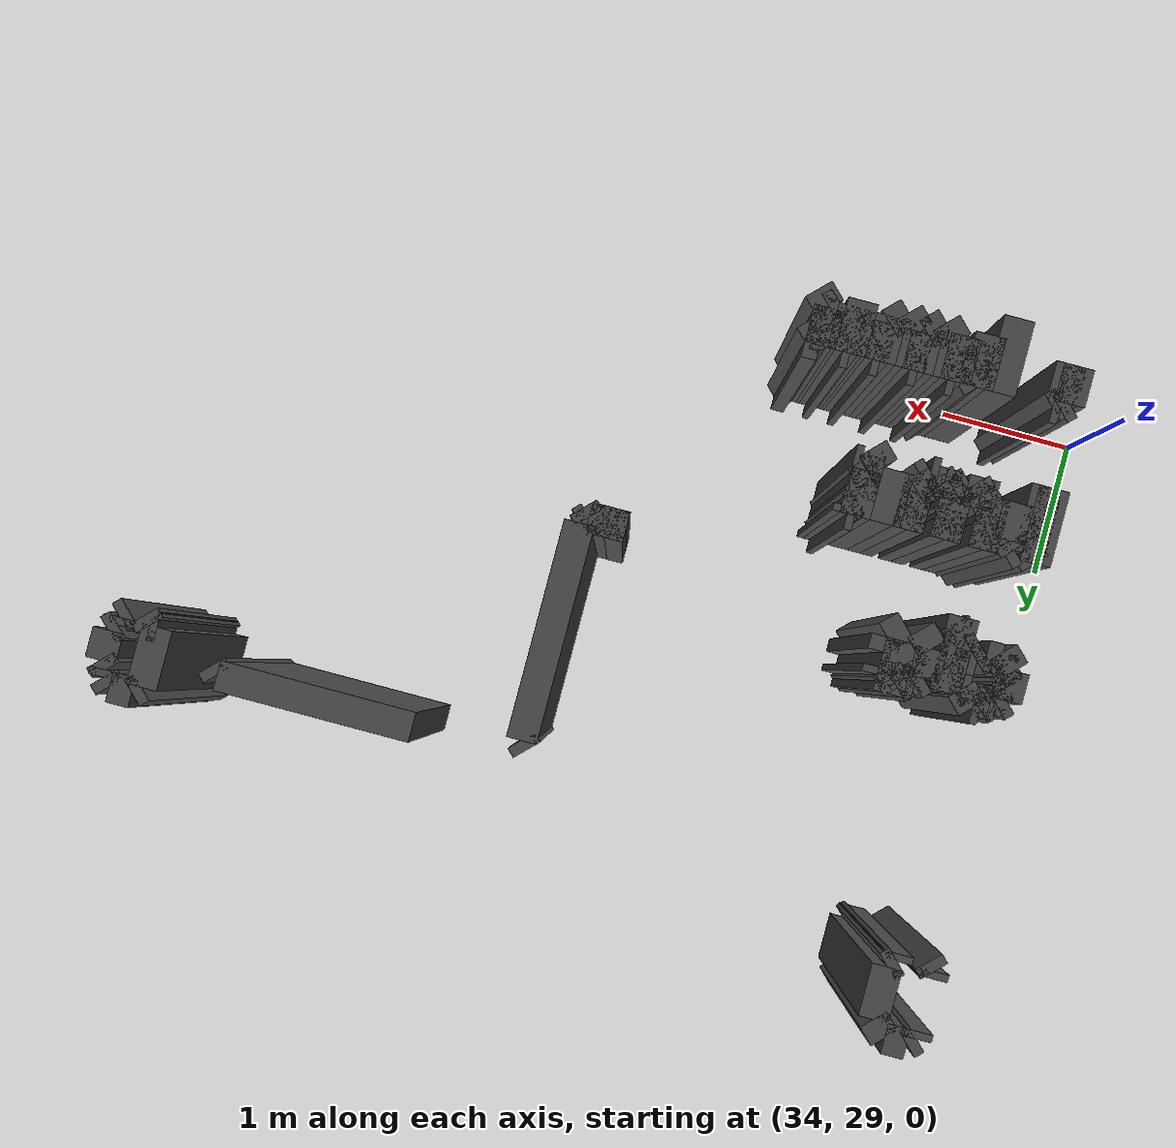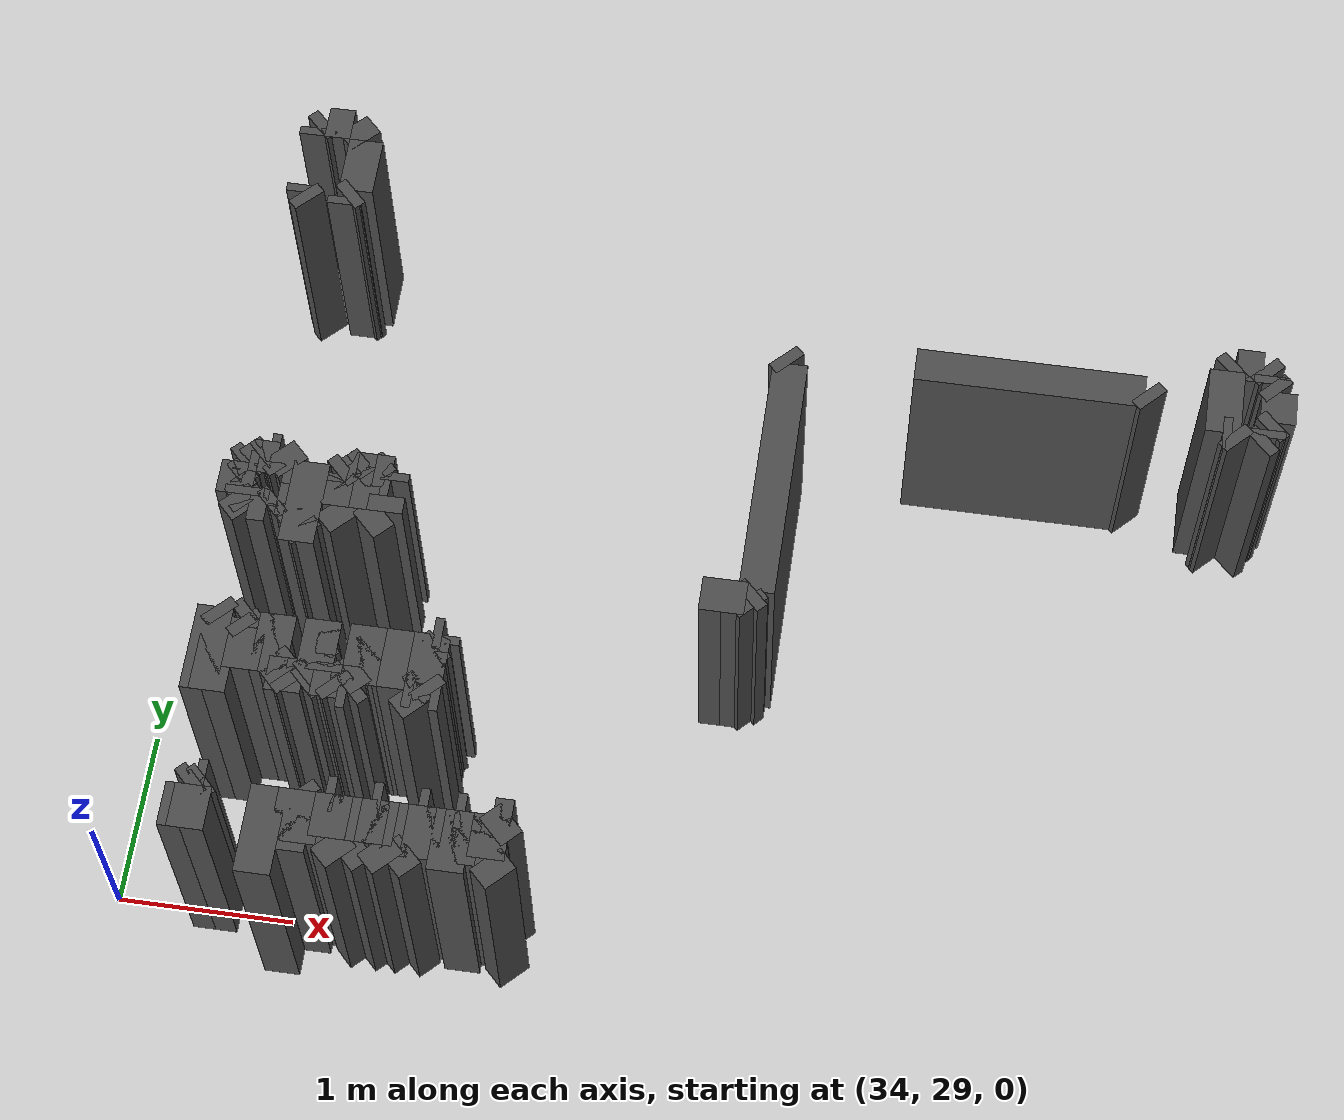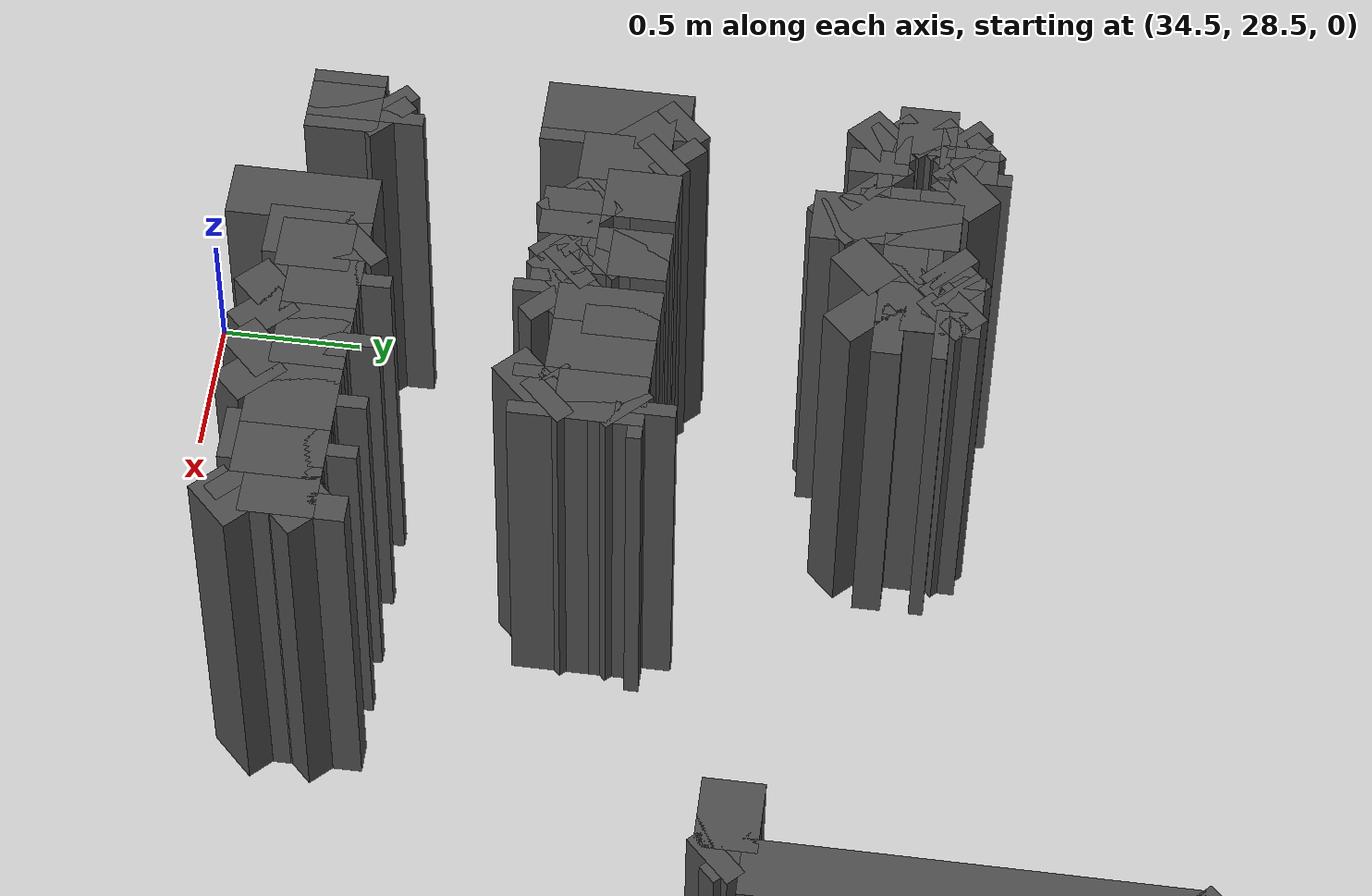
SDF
<sdf version="1.9">
 <model name="generated_walls">
  <static>true</static>
  <link name="wall_7_0">
   <pose>34.475 32.875 0.75 0 0 2.356</pose>
   <collision name="collision"><geometry><box><size>0.071 0.2 1.5</size></box></geometry></collision>
   <visual name="visual">
    <geometry><box><size>0.071 0.2 1.5</size></box></geometry>
    <material><ambient>0.3 0.3 0.3 1</ambient></material>
   </visual>
  </link>
  <link name="wall_7_1">
   <pose>34.450 32.925 0.75 0 0 1.571</pose>
   <collision name="collision"><geometry><box><size>0.050 0.2 1.5</size></box></geometry></collision>
   <visual name="visual">
    <geometry><box><size>0.050 0.2 1.5</size></box></geometry>
    <material><ambient>0.3 0.3 0.3 1</ambient></material>
   </visual>
  </link>
  <link name="wall_7_5">
   <pose>34.450 33.325 0.75 0 0 1.571</pose>
   <collision name="collision"><geometry><box><size>0.050 0.2 1.5</size></box></geometry></collision>
   <visual name="visual">
    <geometry><box><size>0.050 0.2 1.5</size></box></geometry>
    <material><ambient>0.3 0.3 0.3 1</ambient></material>
   </visual>
  </link>
  <link name="wall_7_6">
   <pose>34.475 33.375 0.75 0 0 0.785</pose>
   <collision name="collision"><geometry><box><size>0.071 0.2 1.5</size></box></geometry></collision>
   <visual name="visual">
    <geometry><box><size>0.071 0.2 1.5</size></box></geometry>
    <material><ambient>0.3 0.3 0.3 1</ambient></material>
   </visual>
  </link>
  <link name="wall_7_7">
   <pose>34.575 33.400 0.75 0 0 0.000</pose>
   <collision name="collision"><geometry><box><size>0.150 0.2 1.5</size></box></geometry></collision>
   <visual name="visual">
    <geometry><box><size>0.150 0.2 1.5</size></box></geometry>
    <material><ambient>0.3 0.3 0.3 1</ambient></material>
   </visual>
  </link>
  <link name="wall_7_8">
   <pose>34.700 33.350 0.75 0 0 -0.785</pose>
   <collision name="collision"><geometry><box><size>0.141 0.2 1.5</size></box></geometry></collision>
   <visual name="visual">
    <geometry><box><size>0.141 0.2 1.5</size></box></geometry>
    <material><ambient>0.3 0.3 0.3 1</ambient></material>
   </visual>
  </link>
  <link name="wall_7_9">
   <pose>34.750 33.125 0.75 0 0 -1.571</pose>
   <collision name="collision"><geometry><box><size>0.350 0.2 1.5</size></box></geometry></collision>
   <visual name="visual">
    <geometry><box><size>0.350 0.2 1.5</size></box></geometry>
    <material><ambient>0.3 0.3 0.3 1</ambient></material>
   </visual>
  </link>
  <link name="wall_7_10">
   <pose>34.725 32.925 0.75 0 0 -2.356</pose>
   <collision name="collision"><geometry><box><size>0.071 0.2 1.5</size></box></geometry></collision>
   <visual name="visual">
    <geometry><box><size>0.071 0.2 1.5</size></box></geometry>
    <material><ambient>0.3 0.3 0.3 1</ambient></material>
   </visual>
  </link>
  <link name="wall_7_11">
   <pose>34.700 32.875 0.75 0 0 -1.571</pose>
   <collision name="collision"><geometry><box><size>0.050 0.2 1.5</size></box></geometry></collision>
   <visual name="visual">
    <geometry><box><size>0.050 0.2 1.5</size></box></geometry>
    <material><ambient>0.3 0.3 0.3 1</ambient></material>
   </visual>
  </link>
  <link name="wall_26_0">
   <pose>39.925 32.025 0.75 0 0 2.356</pose>
   <collision name="collision"><geometry><box><size>0.071 0.2 1.5</size></box></geometry></collision>
   <visual name="visual">
    <geometry><box><size>0.071 0.2 1.5</size></box></geometry>
    <material><ambient>0.3 0.3 0.3 1</ambient></material>
   </visual>
  </link>
  <link name="wall_26_1">
   <pose>39.875 32.050 0.75 0 0 3.142</pose>
   <collision name="collision"><geometry><box><size>0.050 0.2 1.5</size></box></geometry></collision>
   <visual name="visual">
    <geometry><box><size>0.050 0.2 1.5</size></box></geometry>
    <material><ambient>0.3 0.3 0.3 1</ambient></material>
   </visual>
  </link>
  <link name="wall_26_2">
   <pose>39.850 32.250 0.75 0 0 1.571</pose>
   <collision name="collision"><geometry><box><size>0.400 0.2 1.5</size></box></geometry></collision>
   <visual name="visual">
    <geometry><box><size>0.400 0.2 1.5</size></box></geometry>
    <material><ambient>0.3 0.3 0.3 1</ambient></material>
   </visual>
  </link>
  <link name="wall_26_3">
   <pose>39.875 32.475 0.75 0 0 0.785</pose>
   <collision name="collision"><geometry><box><size>0.071 0.2 1.5</size></box></geometry></collision>
   <visual name="visual">
    <geometry><box><size>0.071 0.2 1.5</size></box></geometry>
    <material><ambient>0.3 0.3 0.3 1</ambient></material>
   </visual>
  </link>
  <link name="wall_26_4">
   <pose>39.975 32.500 0.75 0 0 0.000</pose>
   <collision name="collision"><geometry><box><size>0.150 0.2 1.5</size></box></geometry></collision>
   <visual name="visual">
    <geometry><box><size>0.150 0.2 1.5</size></box></geometry>
    <material><ambient>0.3 0.3 0.3 1</ambient></material>
   </visual>
  </link>
  <link name="wall_26_5">
   <pose>40.075 32.475 0.75 0 0 -0.785</pose>
   <collision name="collision"><geometry><box><size>0.071 0.2 1.5</size></box></geometry></collision>
   <visual name="visual">
    <geometry><box><size>0.071 0.2 1.5</size></box></geometry>
    <material><ambient>0.3 0.3 0.3 1</ambient></material>
   </visual>
  </link>
  <link name="wall_26_6">
   <pose>40.100 32.425 0.75 0 0 -1.571</pose>
   <collision name="collision"><geometry><box><size>0.050 0.2 1.5</size></box></geometry></collision>
   <visual name="visual">
    <geometry><box><size>0.050 0.2 1.5</size></box></geometry>
    <material><ambient>0.3 0.3 0.3 1</ambient></material>
   </visual>
  </link>
  <link name="wall_26_7">
   <pose>40.125 32.375 0.75 0 0 -0.785</pose>
   <collision name="collision"><geometry><box><size>0.071 0.2 1.5</size></box></geometry></collision>
   <visual name="visual">
    <geometry><box><size>0.071 0.2 1.5</size></box></geometry>
    <material><ambient>0.3 0.3 0.3 1</ambient></material>
   </visual>
  </link>
  <link name="wall_26_8">
   <pose>40.150 32.250 0.75 0 0 -1.571</pose>
   <collision name="collision"><geometry><box><size>0.200 0.2 1.5</size></box></geometry></collision>
   <visual name="visual">
    <geometry><box><size>0.200 0.2 1.5</size></box></geometry>
    <material><ambient>0.3 0.3 0.3 1</ambient></material>
   </visual>
  </link>
  <link name="wall_26_9">
   <pose>40.125 32.125 0.75 0 0 -2.356</pose>
   <collision name="collision"><geometry><box><size>0.071 0.2 1.5</size></box></geometry></collision>
   <visual name="visual">
    <geometry><box><size>0.071 0.2 1.5</size></box></geometry>
    <material><ambient>0.3 0.3 0.3 1</ambient></material>
   </visual>
  </link>
  <link name="wall_26_10">
   <pose>40.100 32.075 0.75 0 0 -1.571</pose>
   <collision name="collision"><geometry><box><size>0.050 0.2 1.5</size></box></geometry></collision>
   <visual name="visual">
    <geometry><box><size>0.050 0.2 1.5</size></box></geometry>
    <material><ambient>0.3 0.3 0.3 1</ambient></material>
   </visual>
  </link>
  <link name="wall_26_11">
   <pose>40.075 32.025 0.75 0 0 -2.356</pose>
   <collision name="collision"><geometry><box><size>0.071 0.2 1.5</size></box></geometry></collision>
   <visual name="visual">
    <geometry><box><size>0.071 0.2 1.5</size></box></geometry>
    <material><ambient>0.3 0.3 0.3 1</ambient></material>
   </visual>
  </link>
  <link name="wall_34_0">
   <pose>35.050 30.850 0.75 0 0 2.356</pose>
   <collision name="collision"><geometry><box><size>0.141 0.2 1.5</size></box></geometry></collision>
   <visual name="visual">
    <geometry><box><size>0.141 0.2 1.5</size></box></geometry>
    <material><ambient>0.3 0.3 0.3 1</ambient></material>
   </visual>
  </link>
  <link name="wall_34_1">
   <pose>35.000 31.000 0.75 0 0 1.571</pose>
   <collision name="collision"><geometry><box><size>0.200 0.2 1.5</size></box></geometry></collision>
   <visual name="visual">
    <geometry><box><size>0.200 0.2 1.5</size></box></geometry>
    <material><ambient>0.3 0.3 0.3 1</ambient></material>
   </visual>
  </link>
  <link name="wall_34_2">
   <pose>35.025 31.125 0.75 0 0 0.785</pose>
   <collision name="collision"><geometry><box><size>0.071 0.2 1.5</size></box></geometry></collision>
   <visual name="visual">
    <geometry><box><size>0.071 0.2 1.5</size></box></geometry>
    <material><ambient>0.3 0.3 0.3 1</ambient></material>
   </visual>
  </link>
  <link name="wall_34_3">
   <pose>35.075 31.150 0.75 0 0 0.000</pose>
   <collision name="collision"><geometry><box><size>0.050 0.2 1.5</size></box></geometry></collision>
   <visual name="visual">
    <geometry><box><size>0.050 0.2 1.5</size></box></geometry>
    <material><ambient>0.3 0.3 0.3 1</ambient></material>
   </visual>
  </link>
  <link name="wall_34_4">
   <pose>35.125 31.175 0.75 0 0 0.785</pose>
   <collision name="collision"><geometry><box><size>0.071 0.2 1.5</size></box></geometry></collision>
   <visual name="visual">
    <geometry><box><size>0.071 0.2 1.5</size></box></geometry>
    <material><ambient>0.3 0.3 0.3 1</ambient></material>
   </visual>
  </link>
  <link name="wall_34_5">
   <pose>35.175 31.175 0.75 0 0 -0.785</pose>
   <collision name="collision"><geometry><box><size>0.071 0.2 1.5</size></box></geometry></collision>
   <visual name="visual">
    <geometry><box><size>0.071 0.2 1.5</size></box></geometry>
    <material><ambient>0.3 0.3 0.3 1</ambient></material>
   </visual>
  </link>
  <link name="wall_34_6">
   <pose>35.250 31.150 0.75 0 0 0.000</pose>
   <collision name="collision"><geometry><box><size>0.100 0.2 1.5</size></box></geometry></collision>
   <visual name="visual">
    <geometry><box><size>0.100 0.2 1.5</size></box></geometry>
    <material><ambient>0.3 0.3 0.3 1</ambient></material>
   </visual>
  </link>
  <link name="wall_34_7">
   <pose>35.300 31.125 0.75 0 0 -1.571</pose>
   <collision name="collision"><geometry><box><size>0.050 0.2 1.5</size></box></geometry></collision>
   <visual name="visual">
    <geometry><box><size>0.050 0.2 1.5</size></box></geometry>
    <material><ambient>0.3 0.3 0.3 1</ambient></material>
   </visual>
  </link>
  <link name="wall_34_8">
   <pose>35.275 31.100 0.75 0 0 3.142</pose>
   <collision name="collision"><geometry><box><size>0.050 0.2 1.5</size></box></geometry></collision>
   <visual name="visual">
    <geometry><box><size>0.050 0.2 1.5</size></box></geometry>
    <material><ambient>0.3 0.3 0.3 1</ambient></material>
   </visual>
  </link>
  <link name="wall_34_9">
   <pose>35.225 31.125 0.75 0 0 2.356</pose>
   <collision name="collision"><geometry><box><size>0.071 0.2 1.5</size></box></geometry></collision>
   <visual name="visual">
    <geometry><box><size>0.071 0.2 1.5</size></box></geometry>
    <material><ambient>0.3 0.3 0.3 1</ambient></material>
   </visual>
  </link>
  <link name="wall_34_10">
   <pose>35.150 31.150 0.75 0 0 3.142</pose>
   <collision name="collision"><geometry><box><size>0.100 0.2 1.5</size></box></geometry></collision>
   <visual name="visual">
    <geometry><box><size>0.100 0.2 1.5</size></box></geometry>
    <material><ambient>0.3 0.3 0.3 1</ambient></material>
   </visual>
  </link>
  <link name="wall_34_11">
   <pose>35.075 31.125 0.75 0 0 -2.356</pose>
   <collision name="collision"><geometry><box><size>0.071 0.2 1.5</size></box></geometry></collision>
   <visual name="visual">
    <geometry><box><size>0.071 0.2 1.5</size></box></geometry>
    <material><ambient>0.3 0.3 0.3 1</ambient></material>
   </visual>
  </link>
  <link name="wall_34_12">
   <pose>35.050 31.075 0.75 0 0 -1.571</pose>
   <collision name="collision"><geometry><box><size>0.050 0.2 1.5</size></box></geometry></collision>
   <visual name="visual">
    <geometry><box><size>0.050 0.2 1.5</size></box></geometry>
    <material><ambient>0.3 0.3 0.3 1</ambient></material>
   </visual>
  </link>
  <link name="wall_34_13">
   <pose>35.075 31.025 0.75 0 0 -0.785</pose>
   <collision name="collision"><geometry><box><size>0.071 0.2 1.5</size></box></geometry></collision>
   <visual name="visual">
    <geometry><box><size>0.071 0.2 1.5</size></box></geometry>
    <material><ambient>0.3 0.3 0.3 1</ambient></material>
   </visual>
  </link>
  <link name="wall_34_14">
   <pose>35.200 31.000 0.75 0 0 0.000</pose>
   <collision name="collision"><geometry><box><size>0.200 0.2 1.5</size></box></geometry></collision>
   <visual name="visual">
    <geometry><box><size>0.200 0.2 1.5</size></box></geometry>
    <material><ambient>0.3 0.3 0.3 1</ambient></material>
   </visual>
  </link>
  <link name="wall_34_15">
   <pose>35.300 30.950 0.75 0 0 -1.571</pose>
   <collision name="collision"><geometry><box><size>0.100 0.2 1.5</size></box></geometry></collision>
   <visual name="visual">
    <geometry><box><size>0.100 0.2 1.5</size></box></geometry>
    <material><ambient>0.3 0.3 0.3 1</ambient></material>
   </visual>
  </link>
  <link name="wall_34_16">
   <pose>35.250 30.850 0.75 0 0 -2.356</pose>
   <collision name="collision"><geometry><box><size>0.141 0.2 1.5</size></box></geometry></collision>
   <visual name="visual">
    <geometry><box><size>0.141 0.2 1.5</size></box></geometry>
    <material><ambient>0.3 0.3 0.3 1</ambient></material>
   </visual>
  </link>
  <link name="wall_35_0">
   <pose>34.500 30.850 0.75 0 0 2.356</pose>
   <collision name="collision"><geometry><box><size>0.141 0.2 1.5</size></box></geometry></collision>
   <visual name="visual">
    <geometry><box><size>0.141 0.2 1.5</size></box></geometry>
    <material><ambient>0.3 0.3 0.3 1</ambient></material>
   </visual>
  </link>
  <link name="wall_35_1">
   <pose>34.450 31.000 0.75 0 0 1.571</pose>
   <collision name="collision"><geometry><box><size>0.200 0.2 1.5</size></box></geometry></collision>
   <visual name="visual">
    <geometry><box><size>0.200 0.2 1.5</size></box></geometry>
    <material><ambient>0.3 0.3 0.3 1</ambient></material>
   </visual>
  </link>
  <link name="wall_35_2">
   <pose>34.475 31.125 0.75 0 0 0.785</pose>
   <collision name="collision"><geometry><box><size>0.071 0.2 1.5</size></box></geometry></collision>
   <visual name="visual">
    <geometry><box><size>0.071 0.2 1.5</size></box></geometry>
    <material><ambient>0.3 0.3 0.3 1</ambient></material>
   </visual>
  </link>
  <link name="wall_35_3">
   <pose>34.525 31.150 0.75 0 0 0.000</pose>
   <collision name="collision"><geometry><box><size>0.050 0.2 1.5</size></box></geometry></collision>
   <visual name="visual">
    <geometry><box><size>0.050 0.2 1.5</size></box></geometry>
    <material><ambient>0.3 0.3 0.3 1</ambient></material>
   </visual>
  </link>
  <link name="wall_35_4">
   <pose>34.575 31.175 0.75 0 0 0.785</pose>
   <collision name="collision"><geometry><box><size>0.071 0.2 1.5</size></box></geometry></collision>
   <visual name="visual">
    <geometry><box><size>0.071 0.2 1.5</size></box></geometry>
    <material><ambient>0.3 0.3 0.3 1</ambient></material>
   </visual>
  </link>
  <link name="wall_35_5">
   <pose>34.625 31.200 0.75 0 0 0.000</pose>
   <collision name="collision"><geometry><box><size>0.050 0.2 1.5</size></box></geometry></collision>
   <visual name="visual">
    <geometry><box><size>0.050 0.2 1.5</size></box></geometry>
    <material><ambient>0.3 0.3 0.3 1</ambient></material>
   </visual>
  </link>
  <link name="wall_35_6">
   <pose>34.700 31.150 0.75 0 0 -0.785</pose>
   <collision name="collision"><geometry><box><size>0.141 0.2 1.5</size></box></geometry></collision>
   <visual name="visual">
    <geometry><box><size>0.141 0.2 1.5</size></box></geometry>
    <material><ambient>0.3 0.3 0.3 1</ambient></material>
   </visual>
  </link>
  <link name="wall_35_7">
   <pose>34.725 31.100 0.75 0 0 3.142</pose>
   <collision name="collision"><geometry><box><size>0.050 0.2 1.5</size></box></geometry></collision>
   <visual name="visual">
    <geometry><box><size>0.050 0.2 1.5</size></box></geometry>
    <material><ambient>0.3 0.3 0.3 1</ambient></material>
   </visual>
  </link>
  <link name="wall_35_8">
   <pose>34.675 31.125 0.75 0 0 2.356</pose>
   <collision name="collision"><geometry><box><size>0.071 0.2 1.5</size></box></geometry></collision>
   <visual name="visual">
    <geometry><box><size>0.071 0.2 1.5</size></box></geometry>
    <material><ambient>0.3 0.3 0.3 1</ambient></material>
   </visual>
  </link>
  <link name="wall_35_9">
   <pose>34.600 31.150 0.75 0 0 3.142</pose>
   <collision name="collision"><geometry><box><size>0.100 0.2 1.5</size></box></geometry></collision>
   <visual name="visual">
    <geometry><box><size>0.100 0.2 1.5</size></box></geometry>
    <material><ambient>0.3 0.3 0.3 1</ambient></material>
   </visual>
  </link>
  <link name="wall_35_10">
   <pose>34.525 31.125 0.75 0 0 -2.356</pose>
   <collision name="collision"><geometry><box><size>0.071 0.2 1.5</size></box></geometry></collision>
   <visual name="visual">
    <geometry><box><size>0.071 0.2 1.5</size></box></geometry>
    <material><ambient>0.3 0.3 0.3 1</ambient></material>
   </visual>
  </link>
  <link name="wall_35_11">
   <pose>34.500 31.075 0.75 0 0 -1.571</pose>
   <collision name="collision"><geometry><box><size>0.050 0.2 1.5</size></box></geometry></collision>
   <visual name="visual">
    <geometry><box><size>0.050 0.2 1.5</size></box></geometry>
    <material><ambient>0.3 0.3 0.3 1</ambient></material>
   </visual>
  </link>
  <link name="wall_35_12">
   <pose>34.475 31.025 0.75 0 0 -2.356</pose>
   <collision name="collision"><geometry><box><size>0.071 0.2 1.5</size></box></geometry></collision>
   <visual name="visual">
    <geometry><box><size>0.071 0.2 1.5</size></box></geometry>
    <material><ambient>0.3 0.3 0.3 1</ambient></material>
   </visual>
  </link>
  <link name="wall_35_13">
   <pose>34.475 30.975 0.75 0 0 -0.785</pose>
   <collision name="collision"><geometry><box><size>0.071 0.2 1.5</size></box></geometry></collision>
   <visual name="visual">
    <geometry><box><size>0.071 0.2 1.5</size></box></geometry>
    <material><ambient>0.3 0.3 0.3 1</ambient></material>
   </visual>
  </link>
  <link name="wall_35_14">
   <pose>34.500 30.925 0.75 0 0 -1.571</pose>
   <collision name="collision"><geometry><box><size>0.050 0.2 1.5</size></box></geometry></collision>
   <visual name="visual">
    <geometry><box><size>0.050 0.2 1.5</size></box></geometry>
    <material><ambient>0.3 0.3 0.3 1</ambient></material>
   </visual>
  </link>
  <link name="wall_35_15">
   <pose>34.525 30.875 0.75 0 0 -0.785</pose>
   <collision name="collision"><geometry><box><size>0.071 0.2 1.5</size></box></geometry></collision>
   <visual name="visual">
    <geometry><box><size>0.071 0.2 1.5</size></box></geometry>
    <material><ambient>0.3 0.3 0.3 1</ambient></material>
   </visual>
  </link>
  <link name="wall_35_16">
   <pose>34.600 30.850 0.75 0 0 0.000</pose>
   <collision name="collision"><geometry><box><size>0.100 0.2 1.5</size></box></geometry></collision>
   <visual name="visual">
    <geometry><box><size>0.100 0.2 1.5</size></box></geometry>
    <material><ambient>0.3 0.3 0.3 1</ambient></material>
   </visual>
  </link>
  <link name="wall_35_17">
   <pose>34.675 30.875 0.75 0 0 0.785</pose>
   <collision name="collision"><geometry><box><size>0.071 0.2 1.5</size></box></geometry></collision>
   <visual name="visual">
    <geometry><box><size>0.071 0.2 1.5</size></box></geometry>
    <material><ambient>0.3 0.3 0.3 1</ambient></material>
   </visual>
  </link>
  <link name="wall_35_18">
   <pose>34.725 30.900 0.75 0 0 0.000</pose>
   <collision name="collision"><geometry><box><size>0.050 0.2 1.5</size></box></geometry></collision>
   <visual name="visual">
    <geometry><box><size>0.050 0.2 1.5</size></box></geometry>
    <material><ambient>0.3 0.3 0.3 1</ambient></material>
   </visual>
  </link>
  <link name="wall_35_19">
   <pose>34.750 30.875 0.75 0 0 -1.571</pose>
   <collision name="collision"><geometry><box><size>0.050 0.2 1.5</size></box></geometry></collision>
   <visual name="visual">
    <geometry><box><size>0.050 0.2 1.5</size></box></geometry>
    <material><ambient>0.3 0.3 0.3 1</ambient></material>
   </visual>
  </link>
  <link name="wall_35_20">
   <pose>34.725 30.825 0.75 0 0 -2.356</pose>
   <collision name="collision"><geometry><box><size>0.071 0.2 1.5</size></box></geometry></collision>
   <visual name="visual">
    <geometry><box><size>0.071 0.2 1.5</size></box></geometry>
    <material><ambient>0.3 0.3 0.3 1</ambient></material>
   </visual>
  </link>
  <link name="wall_42_0">
   <pose>34.850 30.900 0.75 0 0 1.571</pose>
   <collision name="collision"><geometry><box><size>0.500 0.2 1.5</size></box></geometry></collision>
   <visual name="visual">
    <geometry><box><size>0.500 0.2 1.5</size></box></geometry>
    <material><ambient>0.3 0.3 0.3 1</ambient></material>
   </visual>
  </link>
  <link name="wall_42_1">
   <pose>34.850 30.950 0.75 0 0 -1.571</pose>
   <collision name="collision"><geometry><box><size>0.400 0.2 1.5</size></box></geometry></collision>
   <visual name="visual">
    <geometry><box><size>0.400 0.2 1.5</size></box></geometry>
    <material><ambient>0.3 0.3 0.3 1</ambient></material>
   </visual>
  </link>
  <link name="wall_42_2">
   <pose>34.875 30.725 0.75 0 0 -0.785</pose>
   <collision name="collision"><geometry><box><size>0.071 0.2 1.5</size></box></geometry></collision>
   <visual name="visual">
    <geometry><box><size>0.071 0.2 1.5</size></box></geometry>
    <material><ambient>0.3 0.3 0.3 1</ambient></material>
   </visual>
  </link>
  <link name="wall_46_0">
   <pose>35.500 30.025 0.75 0 0 1.571</pose>
   <collision name="collision"><geometry><box><size>0.350 0.2 1.5</size></box></geometry></collision>
   <visual name="visual">
    <geometry><box><size>0.350 0.2 1.5</size></box></geometry>
    <material><ambient>0.3 0.3 0.3 1</ambient></material>
   </visual>
  </link>
  <link name="wall_47_0">
   <pose>34.700 29.975 0.75 0 0 1.571</pose>
   <collision name="collision"><geometry><box><size>0.250 0.2 1.5</size></box></geometry></collision>
   <visual name="visual">
    <geometry><box><size>0.250 0.2 1.5</size></box></geometry>
    <material><ambient>0.3 0.3 0.3 1</ambient></material>
   </visual>
  </link>
  <link name="wall_47_1">
   <pose>34.675 30.125 0.75 0 0 2.356</pose>
   <collision name="collision"><geometry><box><size>0.071 0.2 1.5</size></box></geometry></collision>
   <visual name="visual">
    <geometry><box><size>0.071 0.2 1.5</size></box></geometry>
    <material><ambient>0.3 0.3 0.3 1</ambient></material>
   </visual>
  </link>
  <link name="wall_47_2">
   <pose>34.675 30.175 0.75 0 0 0.785</pose>
   <collision name="collision"><geometry><box><size>0.071 0.2 1.5</size></box></geometry></collision>
   <visual name="visual">
    <geometry><box><size>0.071 0.2 1.5</size></box></geometry>
    <material><ambient>0.3 0.3 0.3 1</ambient></material>
   </visual>
  </link>
  <link name="wall_48_0">
   <pose>34.975 29.825 0.75 0 0 2.356</pose>
   <collision name="collision"><geometry><box><size>0.071 0.2 1.5</size></box></geometry></collision>
   <visual name="visual">
    <geometry><box><size>0.071 0.2 1.5</size></box></geometry>
    <material><ambient>0.3 0.3 0.3 1</ambient></material>
   </visual>
  </link>
  <link name="wall_48_1">
   <pose>34.900 29.850 0.75 0 0 3.142</pose>
   <collision name="collision"><geometry><box><size>0.100 0.2 1.5</size></box></geometry></collision>
   <visual name="visual">
    <geometry><box><size>0.100 0.2 1.5</size></box></geometry>
    <material><ambient>0.3 0.3 0.3 1</ambient></material>
   </visual>
  </link>
  <link name="wall_48_2">
   <pose>34.850 30.025 0.75 0 0 1.571</pose>
   <collision name="collision"><geometry><box><size>0.350 0.2 1.5</size></box></geometry></collision>
   <visual name="visual">
    <geometry><box><size>0.350 0.2 1.5</size></box></geometry>
    <material><ambient>0.3 0.3 0.3 1</ambient></material>
   </visual>
  </link>
  <link name="wall_48_3">
   <pose>34.850 30.075 0.75 0 0 -1.571</pose>
   <collision name="collision"><geometry><box><size>0.250 0.2 1.5</size></box></geometry></collision>
   <visual name="visual">
    <geometry><box><size>0.250 0.2 1.5</size></box></geometry>
    <material><ambient>0.3 0.3 0.3 1</ambient></material>
   </visual>
  </link>
  <link name="wall_48_4">
   <pose>34.900 29.900 0.75 0 0 -0.785</pose>
   <collision name="collision"><geometry><box><size>0.141 0.2 1.5</size></box></geometry></collision>
   <visual name="visual">
    <geometry><box><size>0.141 0.2 1.5</size></box></geometry>
    <material><ambient>0.3 0.3 0.3 1</ambient></material>
   </visual>
  </link>
  <link name="wall_48_5">
   <pose>35.000 29.850 0.75 0 0 0.000</pose>
   <collision name="collision"><geometry><box><size>0.100 0.2 1.5</size></box></geometry></collision>
   <visual name="visual">
    <geometry><box><size>0.100 0.2 1.5</size></box></geometry>
    <material><ambient>0.3 0.3 0.3 1</ambient></material>
   </visual>
  </link>
  <link name="wall_48_6">
   <pose>35.075 29.875 0.75 0 0 0.785</pose>
   <collision name="collision"><geometry><box><size>0.071 0.2 1.5</size></box></geometry></collision>
   <visual name="visual">
    <geometry><box><size>0.071 0.2 1.5</size></box></geometry>
    <material><ambient>0.3 0.3 0.3 1</ambient></material>
   </visual>
  </link>
  <link name="wall_48_7">
   <pose>35.100 30.050 0.75 0 0 1.571</pose>
   <collision name="collision"><geometry><box><size>0.300 0.2 1.5</size></box></geometry></collision>
   <visual name="visual">
    <geometry><box><size>0.300 0.2 1.5</size></box></geometry>
    <material><ambient>0.3 0.3 0.3 1</ambient></material>
   </visual>
  </link>
  <link name="wall_48_8">
   <pose>35.100 30.100 0.75 0 0 -1.571</pose>
   <collision name="collision"><geometry><box><size>0.200 0.2 1.5</size></box></geometry></collision>
   <visual name="visual">
    <geometry><box><size>0.200 0.2 1.5</size></box></geometry>
    <material><ambient>0.3 0.3 0.3 1</ambient></material>
   </visual>
  </link>
  <link name="wall_48_9">
   <pose>35.125 29.975 0.75 0 0 -0.785</pose>
   <collision name="collision"><geometry><box><size>0.071 0.2 1.5</size></box></geometry></collision>
   <visual name="visual">
    <geometry><box><size>0.071 0.2 1.5</size></box></geometry>
    <material><ambient>0.3 0.3 0.3 1</ambient></material>
   </visual>
  </link>
  <link name="wall_48_10">
   <pose>35.150 29.925 0.75 0 0 -1.571</pose>
   <collision name="collision"><geometry><box><size>0.050 0.2 1.5</size></box></geometry></collision>
   <visual name="visual">
    <geometry><box><size>0.050 0.2 1.5</size></box></geometry>
    <material><ambient>0.3 0.3 0.3 1</ambient></material>
   </visual>
  </link>
  <link name="wall_48_11">
   <pose>35.175 29.875 0.75 0 0 -0.785</pose>
   <collision name="collision"><geometry><box><size>0.071 0.2 1.5</size></box></geometry></collision>
   <visual name="visual">
    <geometry><box><size>0.071 0.2 1.5</size></box></geometry>
    <material><ambient>0.3 0.3 0.3 1</ambient></material>
   </visual>
  </link>
  <link name="wall_48_12">
   <pose>35.225 29.850 0.75 0 0 0.000</pose>
   <collision name="collision"><geometry><box><size>0.050 0.2 1.5</size></box></geometry></collision>
   <visual name="visual">
    <geometry><box><size>0.050 0.2 1.5</size></box></geometry>
    <material><ambient>0.3 0.3 0.3 1</ambient></material>
   </visual>
  </link>
  <link name="wall_48_13">
   <pose>35.300 29.900 0.75 0 0 0.785</pose>
   <collision name="collision"><geometry><box><size>0.141 0.2 1.5</size></box></geometry></collision>
   <visual name="visual">
    <geometry><box><size>0.141 0.2 1.5</size></box></geometry>
    <material><ambient>0.3 0.3 0.3 1</ambient></material>
   </visual>
  </link>
  <link name="wall_48_14">
   <pose>35.350 30.075 0.75 0 0 1.571</pose>
   <collision name="collision"><geometry><box><size>0.250 0.2 1.5</size></box></geometry></collision>
   <visual name="visual">
    <geometry><box><size>0.250 0.2 1.5</size></box></geometry>
    <material><ambient>0.3 0.3 0.3 1</ambient></material>
   </visual>
  </link>
  <link name="wall_48_15">
   <pose>35.350 30.025 0.75 0 0 -1.571</pose>
   <collision name="collision"><geometry><box><size>0.350 0.2 1.5</size></box></geometry></collision>
   <visual name="visual">
    <geometry><box><size>0.350 0.2 1.5</size></box></geometry>
    <material><ambient>0.3 0.3 0.3 1</ambient></material>
   </visual>
  </link>
  <link name="wall_48_16">
   <pose>35.325 29.825 0.75 0 0 -2.356</pose>
   <collision name="collision"><geometry><box><size>0.071 0.2 1.5</size></box></geometry></collision>
   <visual name="visual">
    <geometry><box><size>0.071 0.2 1.5</size></box></geometry>
    <material><ambient>0.3 0.3 0.3 1</ambient></material>
   </visual>
  </link>
  <link name="wall_48_17">
   <pose>35.275 29.800 0.75 0 0 3.142</pose>
   <collision name="collision"><geometry><box><size>0.050 0.2 1.5</size></box></geometry></collision>
   <visual name="visual">
    <geometry><box><size>0.050 0.2 1.5</size></box></geometry>
    <material><ambient>0.3 0.3 0.3 1</ambient></material>
   </visual>
  </link>
  <link name="wall_48_18">
   <pose>35.225 29.825 0.75 0 0 2.356</pose>
   <collision name="collision"><geometry><box><size>0.071 0.2 1.5</size></box></geometry></collision>
   <visual name="visual">
    <geometry><box><size>0.071 0.2 1.5</size></box></geometry>
    <material><ambient>0.3 0.3 0.3 1</ambient></material>
   </visual>
  </link>
  <link name="wall_48_19">
   <pose>35.150 29.850 0.75 0 0 3.142</pose>
   <collision name="collision"><geometry><box><size>0.100 0.2 1.5</size></box></geometry></collision>
   <visual name="visual">
    <geometry><box><size>0.100 0.2 1.5</size></box></geometry>
    <material><ambient>0.3 0.3 0.3 1</ambient></material>
   </visual>
  </link>
  <link name="wall_48_20">
   <pose>35.075 29.825 0.75 0 0 -2.356</pose>
   <collision name="collision"><geometry><box><size>0.071 0.2 1.5</size></box></geometry></collision>
   <visual name="visual">
    <geometry><box><size>0.071 0.2 1.5</size></box></geometry>
    <material><ambient>0.3 0.3 0.3 1</ambient></material>
   </visual>
  </link>
  <link name="wall_50_0">
   <pose>35.650 29.800 0.75 0 0 2.356</pose>
   <collision name="collision"><geometry><box><size>0.141 0.2 1.5</size></box></geometry></collision>
   <visual name="visual">
    <geometry><box><size>0.141 0.2 1.5</size></box></geometry>
    <material><ambient>0.3 0.3 0.3 1</ambient></material>
   </visual>
  </link>
  <link name="wall_50_1">
   <pose>35.625 29.850 0.75 0 0 0.000</pose>
   <collision name="collision"><geometry><box><size>0.050 0.2 1.5</size></box></geometry></collision>
   <visual name="visual">
    <geometry><box><size>0.050 0.2 1.5</size></box></geometry>
    <material><ambient>0.3 0.3 0.3 1</ambient></material>
   </visual>
  </link>
  <link name="wall_50_2">
   <pose>35.675 29.875 0.75 0 0 0.785</pose>
   <collision name="collision"><geometry><box><size>0.071 0.2 1.5</size></box></geometry></collision>
   <visual name="visual">
    <geometry><box><size>0.071 0.2 1.5</size></box></geometry>
    <material><ambient>0.3 0.3 0.3 1</ambient></material>
   </visual>
  </link>
  <link name="wall_50_3">
   <pose>35.700 30.050 0.75 0 0 1.571</pose>
   <collision name="collision"><geometry><box><size>0.300 0.2 1.5</size></box></geometry></collision>
   <visual name="visual">
    <geometry><box><size>0.300 0.2 1.5</size></box></geometry>
    <material><ambient>0.3 0.3 0.3 1</ambient></material>
   </visual>
  </link>
  <link name="wall_50_4">
   <pose>35.725 30.200 0.75 0 0 0.000</pose>
   <collision name="collision"><geometry><box><size>0.050 0.2 1.5</size></box></geometry></collision>
   <visual name="visual">
    <geometry><box><size>0.050 0.2 1.5</size></box></geometry>
    <material><ambient>0.3 0.3 0.3 1</ambient></material>
   </visual>
  </link>
  <link name="wall_50_5">
   <pose>35.750 30.175 0.75 0 0 -1.571</pose>
   <collision name="collision"><geometry><box><size>0.050 0.2 1.5</size></box></geometry></collision>
   <visual name="visual">
    <geometry><box><size>0.050 0.2 1.5</size></box></geometry>
    <material><ambient>0.3 0.3 0.3 1</ambient></material>
   </visual>
  </link>
  <link name="wall_50_6">
   <pose>35.725 30.125 0.75 0 0 -2.356</pose>
   <collision name="collision"><geometry><box><size>0.071 0.2 1.5</size></box></geometry></collision>
   <visual name="visual">
    <geometry><box><size>0.071 0.2 1.5</size></box></geometry>
    <material><ambient>0.3 0.3 0.3 1</ambient></material>
   </visual>
  </link>
  <link name="wall_50_7">
   <pose>35.700 30.000 0.75 0 0 -1.571</pose>
   <collision name="collision"><geometry><box><size>0.200 0.2 1.5</size></box></geometry></collision>
   <visual name="visual">
    <geometry><box><size>0.200 0.2 1.5</size></box></geometry>
    <material><ambient>0.3 0.3 0.3 1</ambient></material>
   </visual>
  </link>
  <link name="wall_50_8">
   <pose>35.725 29.875 0.75 0 0 -0.785</pose>
   <collision name="collision"><geometry><box><size>0.071 0.2 1.5</size></box></geometry></collision>
   <visual name="visual">
    <geometry><box><size>0.071 0.2 1.5</size></box></geometry>
    <material><ambient>0.3 0.3 0.3 1</ambient></material>
   </visual>
  </link>
  <link name="wall_50_9">
   <pose>35.775 29.850 0.75 0 0 0.000</pose>
   <collision name="collision"><geometry><box><size>0.050 0.2 1.5</size></box></geometry></collision>
   <visual name="visual">
    <geometry><box><size>0.050 0.2 1.5</size></box></geometry>
    <material><ambient>0.3 0.3 0.3 1</ambient></material>
   </visual>
  </link>
  <link name="wall_53_0">
   <pose>34.500 29.950 0.75 0 0 1.571</pose>
   <collision name="collision"><geometry><box><size>0.500 0.2 1.5</size></box></geometry></collision>
   <visual name="visual">
    <geometry><box><size>0.500 0.2 1.5</size></box></geometry>
    <material><ambient>0.3 0.3 0.3 1</ambient></material>
   </visual>
  </link>
  <link name="wall_53_1">
   <pose>34.525 30.175 0.75 0 0 -0.785</pose>
   <collision name="collision"><geometry><box><size>0.071 0.2 1.5</size></box></geometry></collision>
   <visual name="visual">
    <geometry><box><size>0.071 0.2 1.5</size></box></geometry>
    <material><ambient>0.3 0.3 0.3 1</ambient></material>
   </visual>
  </link>
  <link name="wall_53_2">
   <pose>34.550 29.925 0.75 0 0 -1.571</pose>
   <collision name="collision"><geometry><box><size>0.450 0.2 1.5</size></box></geometry></collision>
   <visual name="visual">
    <geometry><box><size>0.450 0.2 1.5</size></box></geometry>
    <material><ambient>0.3 0.3 0.3 1</ambient></material>
   </visual>
  </link>
  <link name="wall_57_0">
   <pose>36.000 29.025 0.75 0 0 1.571</pose>
   <collision name="collision"><geometry><box><size>0.350 0.2 1.5</size></box></geometry></collision>
   <visual name="visual">
    <geometry><box><size>0.350 0.2 1.5</size></box></geometry>
    <material><ambient>0.3 0.3 0.3 1</ambient></material>
   </visual>
  </link>
  <link name="wall_57_1">
   <pose>36.025 29.200 0.75 0 0 0.000</pose>
   <collision name="collision"><geometry><box><size>0.050 0.2 1.5</size></box></geometry></collision>
   <visual name="visual">
    <geometry><box><size>0.050 0.2 1.5</size></box></geometry>
    <material><ambient>0.3 0.3 0.3 1</ambient></material>
   </visual>
  </link>
  <link name="wall_57_2">
   <pose>36.050 29.050 0.75 0 0 -1.571</pose>
   <collision name="collision"><geometry><box><size>0.300 0.2 1.5</size></box></geometry></collision>
   <visual name="visual">
    <geometry><box><size>0.300 0.2 1.5</size></box></geometry>
    <material><ambient>0.3 0.3 0.3 1</ambient></material>
   </visual>
  </link>
  <link name="wall_58_1">
   <pose>35.300 29.050 0.75 0 0 1.571</pose>
   <collision name="collision"><geometry><box><size>0.300 0.2 1.5</size></box></geometry></collision>
   <visual name="visual">
    <geometry><box><size>0.300 0.2 1.5</size></box></geometry>
    <material><ambient>0.3 0.3 0.3 1</ambient></material>
   </visual>
  </link>
  <link name="wall_58_2">
   <pose>35.325 29.200 0.75 0 0 0.000</pose>
   <collision name="collision"><geometry><box><size>0.050 0.2 1.5</size></box></geometry></collision>
   <visual name="visual">
    <geometry><box><size>0.050 0.2 1.5</size></box></geometry>
    <material><ambient>0.3 0.3 0.3 1</ambient></material>
   </visual>
  </link>
  <link name="wall_58_3">
   <pose>35.350 29.075 0.75 0 0 -1.571</pose>
   <collision name="collision"><geometry><box><size>0.250 0.2 1.5</size></box></geometry></collision>
   <visual name="visual">
    <geometry><box><size>0.250 0.2 1.5</size></box></geometry>
    <material><ambient>0.3 0.3 0.3 1</ambient></material>
   </visual>
  </link>
  <link name="wall_58_4">
   <pose>35.400 28.900 0.75 0 0 -0.785</pose>
   <collision name="collision"><geometry><box><size>0.141 0.2 1.5</size></box></geometry></collision>
   <visual name="visual">
    <geometry><box><size>0.141 0.2 1.5</size></box></geometry>
    <material><ambient>0.3 0.3 0.3 1</ambient></material>
   </visual>
  </link>
  <link name="wall_58_5">
   <pose>35.500 28.900 0.75 0 0 0.785</pose>
   <collision name="collision"><geometry><box><size>0.141 0.2 1.5</size></box></geometry></collision>
   <visual name="visual">
    <geometry><box><size>0.141 0.2 1.5</size></box></geometry>
    <material><ambient>0.3 0.3 0.3 1</ambient></material>
   </visual>
  </link>
  <link name="wall_58_6">
   <pose>35.550 29.075 0.75 0 0 1.571</pose>
   <collision name="collision"><geometry><box><size>0.250 0.2 1.5</size></box></geometry></collision>
   <visual name="visual">
    <geometry><box><size>0.250 0.2 1.5</size></box></geometry>
    <material><ambient>0.3 0.3 0.3 1</ambient></material>
   </visual>
  </link>
  <link name="wall_58_7">
   <pose>35.575 29.200 0.75 0 0 0.000</pose>
   <collision name="collision"><geometry><box><size>0.050 0.2 1.5</size></box></geometry></collision>
   <visual name="visual">
    <geometry><box><size>0.050 0.2 1.5</size></box></geometry>
    <material><ambient>0.3 0.3 0.3 1</ambient></material>
   </visual>
  </link>
  <link name="wall_58_8">
   <pose>35.600 29.075 0.75 0 0 -1.571</pose>
   <collision name="collision"><geometry><box><size>0.250 0.2 1.5</size></box></geometry></collision>
   <visual name="visual">
    <geometry><box><size>0.250 0.2 1.5</size></box></geometry>
    <material><ambient>0.3 0.3 0.3 1</ambient></material>
   </visual>
  </link>
  <link name="wall_58_9">
   <pose>35.650 28.900 0.75 0 0 -0.785</pose>
   <collision name="collision"><geometry><box><size>0.141 0.2 1.5</size></box></geometry></collision>
   <visual name="visual">
    <geometry><box><size>0.141 0.2 1.5</size></box></geometry>
    <material><ambient>0.3 0.3 0.3 1</ambient></material>
   </visual>
  </link>
  <link name="wall_58_10">
   <pose>35.750 28.900 0.75 0 0 0.785</pose>
   <collision name="collision"><geometry><box><size>0.141 0.2 1.5</size></box></geometry></collision>
   <visual name="visual">
    <geometry><box><size>0.141 0.2 1.5</size></box></geometry>
    <material><ambient>0.3 0.3 0.3 1</ambient></material>
   </visual>
  </link>
  <link name="wall_58_11">
   <pose>35.800 29.075 0.75 0 0 1.571</pose>
   <collision name="collision"><geometry><box><size>0.250 0.2 1.5</size></box></geometry></collision>
   <visual name="visual">
    <geometry><box><size>0.250 0.2 1.5</size></box></geometry>
    <material><ambient>0.3 0.3 0.3 1</ambient></material>
   </visual>
  </link>
  <link name="wall_58_12">
   <pose>35.825 29.200 0.75 0 0 0.000</pose>
   <collision name="collision"><geometry><box><size>0.050 0.2 1.5</size></box></geometry></collision>
   <visual name="visual">
    <geometry><box><size>0.050 0.2 1.5</size></box></geometry>
    <material><ambient>0.3 0.3 0.3 1</ambient></material>
   </visual>
  </link>
  <link name="wall_58_13">
   <pose>35.850 29.050 0.75 0 0 -1.571</pose>
   <collision name="collision"><geometry><box><size>0.300 0.2 1.5</size></box></geometry></collision>
   <visual name="visual">
    <geometry><box><size>0.300 0.2 1.5</size></box></geometry>
    <material><ambient>0.3 0.3 0.3 1</ambient></material>
   </visual>
  </link>
  <link name="wall_59_0">
   <pose>35.150 29.025 0.75 0 0 1.571</pose>
   <collision name="collision"><geometry><box><size>0.350 0.2 1.5</size></box></geometry></collision>
   <visual name="visual">
    <geometry><box><size>0.350 0.2 1.5</size></box></geometry>
    <material><ambient>0.3 0.3 0.3 1</ambient></material>
   </visual>
  </link>
  <link name="wall_59_1">
   <pose>35.175 29.175 0.75 0 0 -0.785</pose>
   <collision name="collision"><geometry><box><size>0.071 0.2 1.5</size></box></geometry></collision>
   <visual name="visual">
    <geometry><box><size>0.071 0.2 1.5</size></box></geometry>
    <material><ambient>0.3 0.3 0.3 1</ambient></material>
   </visual>
  </link>
  <link name="wall_59_2">
   <pose>35.200 29.025 0.75 0 0 -1.571</pose>
   <collision name="collision"><geometry><box><size>0.250 0.2 1.5</size></box></geometry></collision>
   <visual name="visual">
    <geometry><box><size>0.250 0.2 1.5</size></box></geometry>
    <material><ambient>0.3 0.3 0.3 1</ambient></material>
   </visual>
  </link>
  <link name="wall_62_3">
   <pose>36.175 28.925 0.75 0 0 0.785</pose>
   <collision name="collision"><geometry><box><size>0.071 0.2 1.5</size></box></geometry></collision>
   <visual name="visual">
    <geometry><box><size>0.071 0.2 1.5</size></box></geometry>
    <material><ambient>0.3 0.3 0.3 1</ambient></material>
   </visual>
  </link>
  <link name="wall_62_4">
   <pose>36.200 29.075 0.75 0 0 1.571</pose>
   <collision name="collision"><geometry><box><size>0.250 0.2 1.5</size></box></geometry></collision>
   <visual name="visual">
    <geometry><box><size>0.250 0.2 1.5</size></box></geometry>
    <material><ambient>0.3 0.3 0.3 1</ambient></material>
   </visual>
  </link>
  <link name="wall_62_5">
   <pose>36.250 29.200 0.75 0 0 0.000</pose>
   <collision name="collision"><geometry><box><size>0.100 0.2 1.5</size></box></geometry></collision>
   <visual name="visual">
    <geometry><box><size>0.100 0.2 1.5</size></box></geometry>
    <material><ambient>0.3 0.3 0.3 1</ambient></material>
   </visual>
  </link>
  <link name="wall_62_6">
   <pose>36.250 29.150 0.75 0 0 -2.356</pose>
   <collision name="collision"><geometry><box><size>0.141 0.2 1.5</size></box></geometry></collision>
   <visual name="visual">
    <geometry><box><size>0.141 0.2 1.5</size></box></geometry>
    <material><ambient>0.3 0.3 0.3 1</ambient></material>
   </visual>
  </link>
  <link name="wall_62_7">
   <pose>36.200 29.025 0.75 0 0 -1.571</pose>
   <collision name="collision"><geometry><box><size>0.150 0.2 1.5</size></box></geometry></collision>
   <visual name="visual">
    <geometry><box><size>0.150 0.2 1.5</size></box></geometry>
    <material><ambient>0.3 0.3 0.3 1</ambient></material>
   </visual>
  </link>
  <link name="wall_62_8">
   <pose>36.250 28.900 0.75 0 0 -0.785</pose>
   <collision name="collision"><geometry><box><size>0.141 0.2 1.5</size></box></geometry></collision>
   <visual name="visual">
    <geometry><box><size>0.141 0.2 1.5</size></box></geometry>
    <material><ambient>0.3 0.3 0.3 1</ambient></material>
   </visual>
  </link>
  <link name="wall_63_2">
   <pose>34.550 29.025 0.75 0 0 1.571</pose>
   <collision name="collision"><geometry><box><size>0.250 0.2 1.5</size></box></geometry></collision>
   <visual name="visual">
    <geometry><box><size>0.250 0.2 1.5</size></box></geometry>
    <material><ambient>0.3 0.3 0.3 1</ambient></material>
   </visual>
  </link>
  <link name="wall_63_3">
   <pose>34.575 29.175 0.75 0 0 0.785</pose>
   <collision name="collision"><geometry><box><size>0.071 0.2 1.5</size></box></geometry></collision>
   <visual name="visual">
    <geometry><box><size>0.071 0.2 1.5</size></box></geometry>
    <material><ambient>0.3 0.3 0.3 1</ambient></material>
   </visual>
  </link>
  <link name="wall_63_4">
   <pose>34.625 29.200 0.75 0 0 0.000</pose>
   <collision name="collision"><geometry><box><size>0.050 0.2 1.5</size></box></geometry></collision>
   <visual name="visual">
    <geometry><box><size>0.050 0.2 1.5</size></box></geometry>
    <material><ambient>0.3 0.3 0.3 1</ambient></material>
   </visual>
  </link>
  <link name="wall_63_5">
   <pose>34.625 29.175 0.75 0 0 -2.356</pose>
   <collision name="collision"><geometry><box><size>0.071 0.2 1.5</size></box></geometry></collision>
   <visual name="visual">
    <geometry><box><size>0.071 0.2 1.5</size></box></geometry>
    <material><ambient>0.3 0.3 0.3 1</ambient></material>
   </visual>
  </link>
  <link name="wall_63_6">
   <pose>34.600 29.025 0.75 0 0 -1.571</pose>
   <collision name="collision"><geometry><box><size>0.250 0.2 1.5</size></box></geometry></collision>
   <visual name="visual">
    <geometry><box><size>0.250 0.2 1.5</size></box></geometry>
    <material><ambient>0.3 0.3 0.3 1</ambient></material>
   </visual>
  </link>
  <link name="wall_66_0">
   <pose>35.000 28.950 0.75 0 0 1.571</pose>
   <collision name="collision"><geometry><box><size>0.500 0.2 1.5</size></box></geometry></collision>
   <visual name="visual">
    <geometry><box><size>0.500 0.2 1.5</size></box></geometry>
    <material><ambient>0.3 0.3 0.3 1</ambient></material>
   </visual>
  </link>
  <link name="wall_154_1">
   <pose>38.750 32.250 0.75 0 0 0.000</pose>
   <collision name="collision"><geometry><box><size>1.300 0.2 1.5</size></box></geometry></collision>
   <visual name="visual">
    <geometry><box><size>1.300 0.2 1.5</size></box></geometry>
    <material><ambient>0.3 0.3 0.3 1</ambient></material>
   </visual>
  </link>
  <link name="wall_154_2">
   <pose>39.425 32.225 0.75 0 0 -0.785</pose>
   <collision name="collision"><geometry><box><size>0.071 0.2 1.5</size></box></geometry></collision>
   <visual name="visual">
    <geometry><box><size>0.071 0.2 1.5</size></box></geometry>
    <material><ambient>0.3 0.3 0.3 1</ambient></material>
   </visual>
  </link>
  <link name="wall_155_22">
   <pose>37.375 30.625 0.75 0 0 2.356</pose>
   <collision name="collision"><geometry><box><size>0.071 0.2 1.5</size></box></geometry></collision>
   <visual name="visual">
    <geometry><box><size>0.071 0.2 1.5</size></box></geometry>
    <material><ambient>0.3 0.3 0.3 1</ambient></material>
   </visual>
  </link>
  <link name="wall_155_23">
   <pose>37.225 30.650 0.75 0 0 3.142</pose>
   <collision name="collision"><geometry><box><size>0.250 0.2 1.5</size></box></geometry></collision>
   <visual name="visual">
    <geometry><box><size>0.250 0.2 1.5</size></box></geometry>
    <material><ambient>0.3 0.3 0.3 1</ambient></material>
   </visual>
  </link>
  <link name="wall_155_24">
   <pose>37.225 30.650 0.75 0 0 0.000</pose>
   <collision name="collision"><geometry><box><size>0.250 0.2 1.5</size></box></geometry></collision>
   <visual name="visual">
    <geometry><box><size>0.250 0.2 1.5</size></box></geometry>
    <material><ambient>0.3 0.3 0.3 1</ambient></material>
   </visual>
  </link>
  <link name="wall_155_25">
   <pose>37.375 30.675 0.75 0 0 0.785</pose>
   <collision name="collision"><geometry><box><size>0.071 0.2 1.5</size></box></geometry></collision>
   <visual name="visual">
    <geometry><box><size>0.071 0.2 1.5</size></box></geometry>
    <material><ambient>0.3 0.3 0.3 1</ambient></material>
   </visual>
  </link>
  <link name="wall_155_26">
   <pose>37.400 31.425 0.75 0 0 1.571</pose>
   <collision name="collision"><geometry><box><size>1.450 0.2 1.5</size></box></geometry></collision>
   <visual name="visual">
    <geometry><box><size>1.450 0.2 1.5</size></box></geometry>
    <material><ambient>0.3 0.3 0.3 1</ambient></material>
   </visual>
  </link>
  <link name="wall_155_27">
   <pose>37.375 32.175 0.75 0 0 2.356</pose>
   <collision name="collision"><geometry><box><size>0.071 0.2 1.5</size></box></geometry></collision>
   <visual name="visual">
    <geometry><box><size>0.071 0.2 1.5</size></box></geometry>
    <material><ambient>0.3 0.3 0.3 1</ambient></material>
   </visual>
  </link>
 </model>
</sdf>
